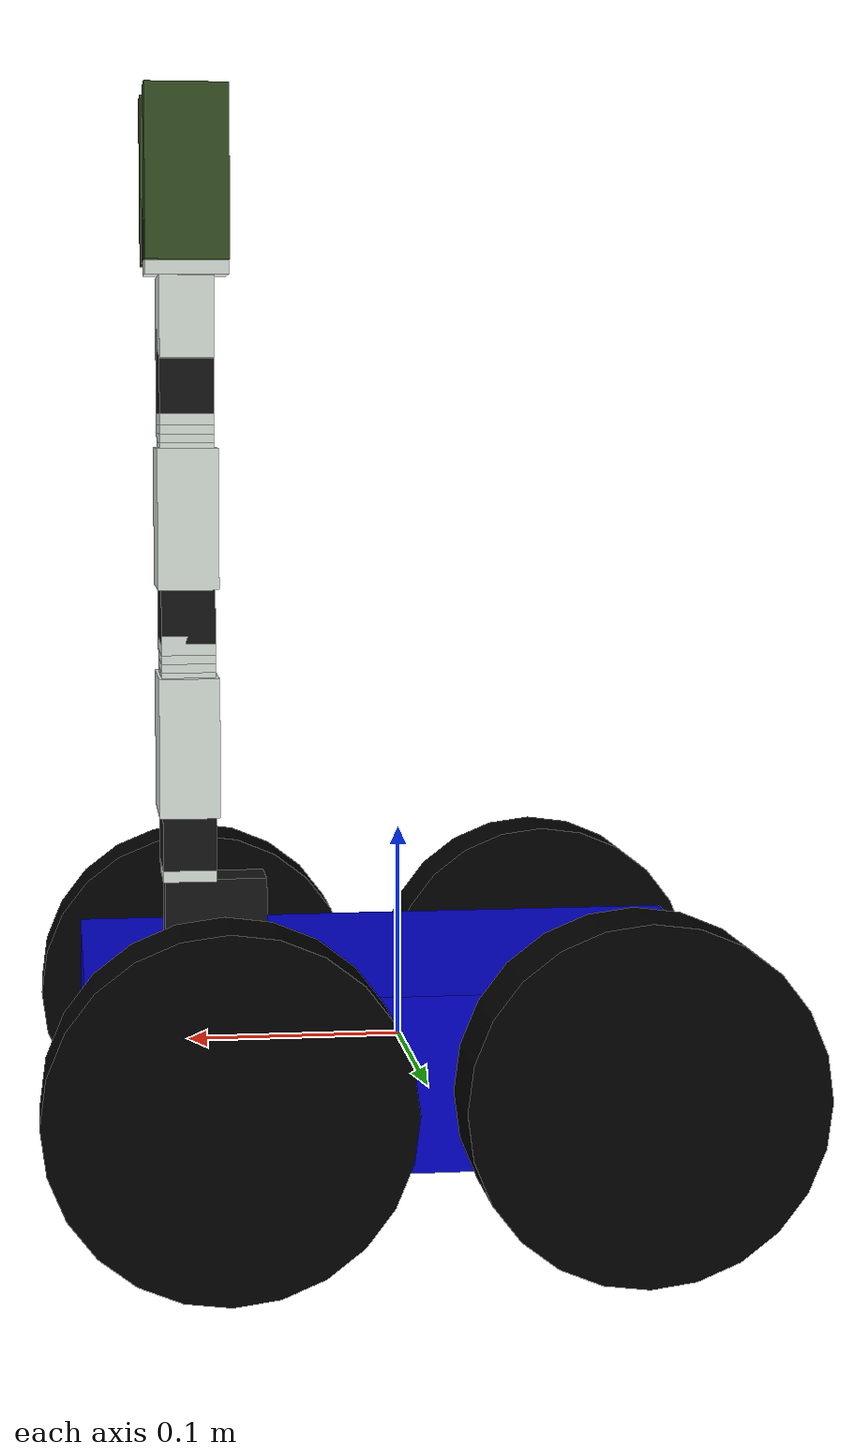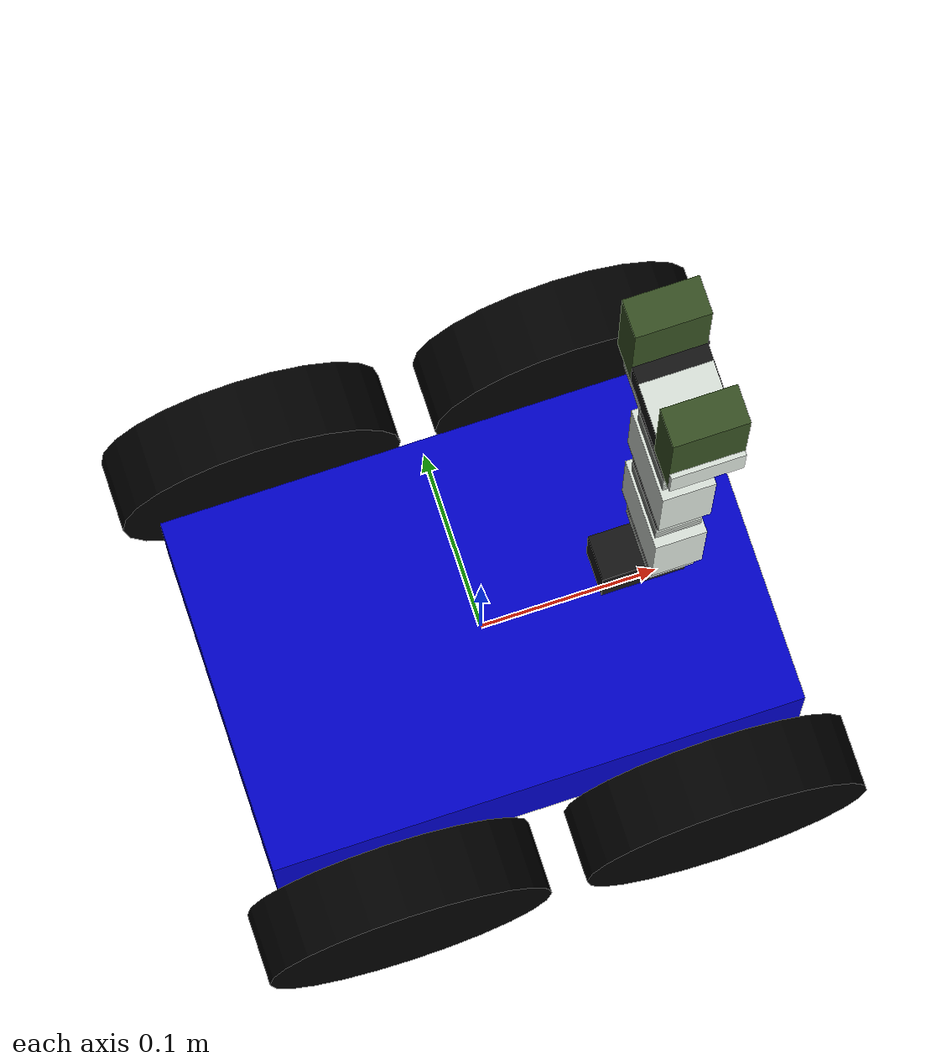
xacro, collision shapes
<?xml version="1.0"?>
<robot name="armbot" xmlns:xacro="http://ros.org/wiki/xacro">

  <xacro:property name="wheel_radius" value="0.08" />
  <xacro:property name="wheel_thickness" value="0.04" />
  <xacro:property name="chesis_length" value="0.3" />
  <xacro:property name="chesis_breadth" value="0.2" />
  <xacro:property name="chesis_height" value="0.08" />

  <material name="blue">
    <color rgba="0 0 0.8 1"/>
  </material>

  <material name="black">
    <color rgba="0 0 0 1"/>
  </material>

  <material name="white">
    <color rgba="1 1 1 1"/>
  </material>

  <xacro:macro name="box_inertia" params="mass x y z">
    <inertial>
      <mass value="${mass}" />
      <inertia ixx="${(1/12)*mass*(y*y+z*z)}" ixy="0.0" ixz="0.0" iyy="${(1/12)*mass*(x*x+z*z)}" iyz="0.0" izz="${(1/12)*mass*(y*y+x*x)}" />
    </inertial>
  </xacro:macro>

  <xacro:macro name="cyl_inertia" params="mass r h">
    <inertial>
      <mass value="${mass}" />
      <inertia ixx="${(1/12)*mass*(3*r*r+h*h)}" ixy="0.0" ixz="0.0" iyy="${(1/12)*mass*(3*r*r+h*h)}" iyz="0.0" izz="${(1/2)*mass*r*r}" />
    </inertial>
  </xacro:macro>

  <link name="base_link"></link>

  <link name="chesis">
    <visual>
      <geometry>
        <box size="${chesis_length} ${chesis_breadth} ${chesis_height}"/>
      </geometry>
      <material name="blue"/>
    </visual>
    <collision>
      <geometry>
        <box size="${chesis_length} ${chesis_breadth} ${chesis_height}"/>
      </geometry>
    </collision>
    <xacro:box_inertia mass="0.5" x="${chesis_length}" y="${chesis_breadth}" z="${chesis_height}"/>
  </link>

  <gazebo reference="chesis">
       <material>Gazebo/Blue</material>
    </gazebo>

  <joint name="fixed_joint" type="fixed">
      <parent link="base_link"/>
      <child link="chesis"/>
  </joint>

  <xacro:macro name="wheel" params="prefix suffix posx posy">
    <link name="${prefix}_${suffix}_wheel">
      <visual>
        <origin xyz="0 0 0" rpy="${pi/2} 0 0" />
        <geometry>
          <cylinder radius="${wheel_radius}" length="${wheel_thickness}"/>
        </geometry>
        <material name="black"/>
      </visual>
      <collision>
        <origin xyz="0 0 0" rpy="${pi/2} 0 0" />
        <geometry>
          <cylinder radius="${wheel_radius}" length="${wheel_thickness}"/>
        </geometry>
      </collision>
      <xacro:cyl_inertia mass="0.1" r="${wheel_radius}" h="${wheel_thickness}"/>
    </link>
    <joint name="${prefix}_${suffix}_wheel_joint" type="continuous">
      <axis xyz="0 1 0" rpy="0 0 0" />
      <parent link="chesis"/>
      <child link="${prefix}_${suffix}_wheel"/>
      <origin xyz="${(chesis_length*0.3)*posx} ${(chesis_breadth/2+wheel_thickness/2)*1.1*posy} 0" rpy="0 0 0"/>
      <dynamics damping="0"/>
    </joint>

    <gazebo reference="${prefix}_${suffix}_wheel">
       <material>Gazebo/DarkGray</material>
    </gazebo>

    <transmission name="${prefix}_${suffix}_wheel_trans">
      <type>transmission_interface/SimpleTransmission</type>
      <actuator name="${prefix}_${suffix}_wheel_motor">
        <mechanicalReduction>1</mechanicalReduction>
      </actuator>
      <joint name="${prefix}_${suffix}_wheel_joint">
        <hardwareInterface>hardware_interface/VelocityJointInterface</hardwareInterface>
      </joint>
    </transmission>
  </xacro:macro>

  <xacro:wheel prefix="front" suffix="left" posx="1" posy="1"/>
  <xacro:wheel prefix="front" suffix="right" posx="1" posy="-1"/>
  <xacro:wheel prefix="back" suffix="left" posx="-1" posy="1"/>
  <xacro:wheel prefix="back" suffix="right" posx="-1" posy="-1"/>

  <xacro:include filename="$(find roboarm)/urdf/armbot/sensors.xacro"/>
  <xacro:rgb_camera camera_name="armbot_rgb_camera" parent_link="chesis">
    <box size="0.001 0.008 0.008"/>
    <origin xyz="${(chesis_length/2)*1.001} 0 ${(chesis_height/2)*0.5}" rpy="0 0 0"/>
  </xacro:rgb_camera>
  <xacro:depth_camera camera_name="armbot_depth_camera" parent_link="chesis">
    <box size="0.001 0.08 0.01"/>
    <origin xyz="${(chesis_length/2)*1.001} 0 0" rpy="0 0 0"/>
  </xacro:depth_camera>

  <xacro:include filename="$(find roboarm)/urdf/turtlebot_arm/tbarm.xacro"/>
  <xacro:turtlebot_arm parent="chesis" color="White" gripper_color="Green"
                  pincher_gripper="false" turtlebot_gripper="true">
    <origin xyz="0.1 0 0.06"/>
  </xacro:turtlebot_arm>

  <!-- Gazebo plugin for ROS Control -->
  <gazebo>
    <plugin name="gazebo_ros_control" filename="libgazebo_ros_control.so">
      <robotNamespace>/armbot</robotNamespace>
      <legacyModeNS>true</legacyModeNS>
      <robotSimType>gazebo_ros_control/DefaultRobotHWSim</robotSimType>
    </plugin>
  </gazebo>

</robot>

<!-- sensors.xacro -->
<robot xmlns:xacro="http://ros.org/wiki/xacro">

  <xacro:macro name="rgb_camera" params="camera_name parent_link *box *origin">
    <link name="${camera_name}">
      <collision>
        <origin xyz="0 0 0" rpy="0 0 0"/>
        <geometry>
          <xacro:insert_block name="box"/>
        </geometry>
      </collision>

      <visual>
        <origin xyz="0 0 0" rpy="0 0 0"/>
        <geometry>
          <xacro:insert_block name="box"/>
        </geometry>
      </visual>

    </link>

    <joint name="${camera_name}_joint" type="fixed">
      <axis xyz="1 0 0" />
      <xacro:insert_block name="origin"/>
      <parent link="${parent_link}"/>
      <child link="${camera_name}"/>
    </joint>

    <gazebo reference="${camera_name}">
      <sensor type="camera" name="${camera_name}">
        <update_rate>30.0</update_rate>
        <camera name="${camera_name}">
          <horizontal_fov>1.3962634</horizontal_fov>
          <image>
            <width>800</width>
            <height>800</height>
            <format>R8G8B8</format>
          </image>
          <clip>
            <near>0.02</near>
            <far>300</far>
          </clip>
          <noise>
            <type>gaussian</type>
            <mean>0.0</mean>
            <stddev>0.007</stddev>
          </noise>
        </camera>
        <plugin name="camera_controller" filename="libgazebo_ros_camera.so">
          <alwaysOn>true</alwaysOn>
          <updateRate>0.0</updateRate>
          <cameraName>${camera_name}</cameraName>
          <imageTopicName>image_raw</imageTopicName>
          <cameraInfoTopicName>camera_info</cameraInfoTopicName>
          <frameName>${camera_name}</frameName>
          <hackBaseline>0.07</hackBaseline>
          <distortionK1>0.0</distortionK1>
          <distortionK2>0.0</distortionK2>
          <distortionK3>0.0</distortionK3>
          <distortionT1>0.0</distortionT1>
          <distortionT2>0.0</distortionT2>
        </plugin>
      </sensor>
      <material>Gazebo/Gray</material>
    </gazebo>
  </xacro:macro>

  <xacro:macro name="depth_camera" params="camera_name parent_link *box *origin">
    <link name="${camera_name}">
      <collision>
        <origin xyz="0 0 0" rpy="0 0 0"/>
        <geometry>
          <xacro:insert_block name="box"/>
        </geometry>
      </collision>

      <visual>
        <origin xyz="0 0 0" rpy="0 0 0"/>
        <geometry>
          <xacro:insert_block name="box"/>
        </geometry>
      </visual>

    </link>

    <joint name="${camera_name}_joint" type="fixed">
      <axis xyz="1 0 0" />
      <xacro:insert_block name="origin"/>
      <parent link="${parent_link}"/>
      <child link="${camera_name}"/>
    </joint>

    <link name="camera_depth_link"></link>
    <joint name="cameraLeft_depth_joint" type="fixed">
      <origin xyz="0 0 0" rpy="-${pi/2} 0 -${pi/2} "/>
      <parent link="${camera_name}"/>
      <child link="camera_depth_link"/>
    </joint>

    <gazebo reference="${camera_name}">
      <sensor name="${camera_name}_camera" type="depth">
        <update_rate>20</update_rate>
        <camera>
          <horizontal_fov>1.047198</horizontal_fov>
          <image>
            <width>640</width>
            <height>480</height>
            <format>R8G8B8</format>
          </image>
          <clip>
            <near>0.001</near>
            <far>3</far>
          </clip>
        </camera>
        <plugin name="${camera_name}_controller" filename="libgazebo_ros_openni_kinect.so">
          <baseline>0.2</baseline>
          <alwaysOn>true</alwaysOn>
          <updateRate>1.0</updateRate>
          <cameraName>${camera_name}_ir</cameraName>
          <imageTopicName>/${camera_name}/depth/image_raw</imageTopicName>
          <cameraInfoTopicName>/${camera_name}/depth/camera_info</cameraInfoTopicName>
          <depthImageTopicName>/${camera_name}/depth/image_raw</depthImageTopicName>
          <depthImageInfoTopicName>/${camera_name}/depth/camera_info</depthImageInfoTopicName>
          <pointCloudTopicName>/${camera_name}/depth/points</pointCloudTopicName>
          <frameName>camera_depth_link</frameName>
          <pointCloudCutoff>0.001</pointCloudCutoff>
          <pointCloudCutoffMax>3.0</pointCloudCutoffMax>
          <distortionK1>0.00000001</distortionK1>
          <distortionK2>0.00000001</distortionK2>
          <distortionK3>0.00000001</distortionK3>
          <distortionT1>0.00000001</distortionT1>
          <distortionT2>0.00000001</distortionT2>
          <CxPrime>0</CxPrime>
          <Cx>0</Cx>
          <Cy>0</Cy>
          <focalLength>0</focalLength>
          <hackBaseline>0</hackBaseline>
        </plugin>
      </sensor>
    </gazebo>
  </xacro:macro>

  <xacro:macro name="imu" params="imu_name parent_link *box *origin">
    <link name="${imu_name}">

      <visual>
        <origin xyz="0 0 0" rpy="0 0 0"/>
        <geometry>
          <xacro:insert_block name="box"/>
        </geometry>
      </visual>

    </link>

    <joint name="${imu_name}_joint" type="fixed">
      <axis xyz="0 0 1" />
      <xacro:insert_block name="origin"/>
      <parent link="${parent_link}"/>
      <child link="${imu_name}"/>
    </joint>

    <gazebo reference="${imu_name}">
      <gravity>true</gravity>
      <sensor name="${imu_name}" type="imu">
        <always_on>true</always_on>
        <update_rate>100</update_rate>
        <visualize>true</visualize>
        <topic>__default_topic__</topic>
        <plugin filename="libgazebo_ros_imu_sensor.so" name="imu_plugin">
          <topicName>armbot/${imu_name}</topicName>
          <bodyName>${imu_name}_link</bodyName>
          <updateRateHZ>30.0</updateRateHZ>
          <gaussianNoise>0.0</gaussianNoise>
          <xyzOffset>0 0 0</xyzOffset>
          <rpyOffset>0 0 0</rpyOffset>
          <frameName>${imu_name}</frameName>
        </plugin>
        <pose>0 0 0 0 0 0</pose>
      </sensor>
    </gazebo>
  </xacro:macro>

</robot>

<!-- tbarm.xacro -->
<robot xmlns:xacro="http://ros.org/wiki/xacro">

    <xacro:property name="joints_vlimit" value="0.571"/>
    <xacro:property name="pan_llimit" value="-2.617"/>
    <xacro:property name="pan_ulimit" value="2.617"/>
    <xacro:property name="shoulder_llimit" value="-2.617"/>
    <xacro:property name="shoulder_ulimit" value="2.617"/>
    <xacro:property name="elbow_llimit" value="-2.617"/>
    <xacro:property name="elbow_ulimit" value="2.617"/>
    <xacro:property name="wrist_llimit" value="-1.745"/>
    <xacro:property name="wrist_ulimit" value="1.745"/>

    <!-- Included URDF Files -->
    <xacro:include filename="$(find roboarm)/urdf/turtlebot_arm/turtlebot_arm.xacro"/>

    <xacro:macro name="servo_transmission" params="name">
      <transmission name="${name}_trans">
        <type>transmission_interface/SimpleTransmission</type>
        <actuator name="${name}_motor">
          <mechanicalReduction>1</mechanicalReduction>
        </actuator>
        <joint name="${name}_joint">
          <hardwareInterface>hardware_interface/PositionJointInterface</hardwareInterface>
        </joint>
      </transmission>
    </xacro:macro>

    <xacro:servo_transmission name="arm_shoulder_pan"/>
    <xacro:servo_transmission name="arm_shoulder_lift"/>
    <xacro:servo_transmission name="arm_elbow_flex"/>
    <xacro:servo_transmission name="arm_wrist_flex"/>
    <xacro:servo_transmission name="gripper"/>

    <xacro:imu imu_name="shoulder_imu" parent_link="arm_shoulder_lift_link">
        <box size="0.008 0.008 0.001"/>
        <origin xyz="0 0 0" rpy="0 0 0"/>
    </xacro:imu>
    <xacro:imu imu_name="elbow_imu" parent_link="arm_elbow_flex_link">
        <box size="0.008 0.008 0.001"/>
        <origin xyz="0 0 0" rpy="0 0 0"/>
    </xacro:imu>
    <xacro:imu imu_name="wrist_imu" parent_link="arm_wrist_flex_link">
        <box size="0.008 0.008 0.001"/>
        <origin xyz="0 0 0" rpy="0 0 0"/>
    </xacro:imu>

</robot>

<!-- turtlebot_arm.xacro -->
<!-- Arm description for Turtlebot Arm and PhantomX Pincher arm -->
<robot xmlns:xacro="http://ros.org/wiki/xacro">
  <xacro:include filename="$(find roboarm)/urdf/turtlebot_arm/arm_hardware.xacro"/>

  <material name="White">
    <color rgba="0.87 0.90 0.87 1.0"/>
  </material>
  <material name="Black">
    <color rgba="0.08 0.08 0.08 1.0"/>
  </material>
  <material name="Gray">
    <color rgba="0.2 0.2 0.21 1.0"/>
  </material>
  <material name="Green">
    <color rgba="0.22 0.32 0.14 1.0"/>
  </material>

  <xacro:macro name="turtlebot_arm" params="parent color pincher_gripper turtlebot_gripper gripper_color *origin">
    <link name="arm_base_link"/>
    <joint name="arm_base_joint" type="fixed">
      <xacro:insert_block name="origin"/>
      <parent link="${parent}"/>
      <child link="arm_base_link"/>
    </joint>

    <!-- shoulder pan joint -->
    <xacro:dynamixel_AX12_fixed parent="arm_base_link" name="arm_shoulder_pan_servo">
      <origin xyz="0 0 0" rpy="${M_PI/2} 0 ${M_PI/2}"/>
    </xacro:dynamixel_AX12_fixed>
    <xacro:bioloid_F3_revolute parent="arm_shoulder_pan_servo_link" name="arm_shoulder_pan" color="${color}"
                         vlimit="${joints_vlimit}" llimit="${pan_llimit}" ulimit="${pan_ulimit}">
      <origin xyz="0 ${AX12_WIDTH/2} 0" rpy="${-M_PI/2} ${M_PI/2} ${M_PI}"/>
    </xacro:bioloid_F3_revolute>

    <!-- shoulder lift joint -->
    <xacro:dynamixel_AX12_fixed parent="arm_shoulder_pan_link" name="arm_shoulder_lift_servo">
      <origin xyz="0 0 ${-AX12_HEIGHT-F10_HEIGHT+0.001}" rpy="0 ${M_PI} 0"/>
    </xacro:dynamixel_AX12_fixed>
    <xacro:bioloid_F4_revolute parent="arm_shoulder_lift_servo_link" name="arm_shoulder_lift" color="${color}"
                         vlimit="${joints_vlimit}" llimit="${shoulder_llimit}" ulimit="${shoulder_ulimit}">
      <origin xyz="0 0 0" rpy="0 0 0"/>
    </xacro:bioloid_F4_revolute>
    <xacro:bioloid_F10_fixed parent="arm_shoulder_lift_link" name="arm_shoulder_F10_0" color="${color}">
      <origin xyz="0 0 ${F4_HEIGHT+F10_HEIGHT/2}" rpy="0 0 0"/>
    </xacro:bioloid_F10_fixed>
    <xacro:bioloid_F10_fixed parent="arm_shoulder_F10_0_link" name="arm_shoulder_F10_1" color="${color}">
      <origin xyz="0 0 ${F10_HEIGHT}" rpy="0 0 0"/>
    </xacro:bioloid_F10_fixed>
    <xacro:bioloid_F10_fixed parent="arm_shoulder_F10_1_link" name="arm_shoulder_F10_2" color="${color}">
      <origin xyz="0 0 ${F10_HEIGHT}" rpy="0 0 0"/>
    </xacro:bioloid_F10_fixed>
    <xacro:bioloid_F3_fixed parent="arm_shoulder_F10_2_link" name="arm_shoulder_F3_0" color="${color}">
      <origin xyz="0 0 ${F10_HEIGHT/2}" rpy="0 ${M_PI} 0"/>
    </xacro:bioloid_F3_fixed>

    <!-- elbow joint -->
    <xacro:dynamixel_AX12_fixed parent="arm_shoulder_F3_0_link" name="arm_elbow_flex_servo">
      <origin xyz="0 0 ${-AX12_HEIGHT-F10_HEIGHT+0.001}" rpy="0 ${M_PI} 0"/>
    </xacro:dynamixel_AX12_fixed>
    <xacro:bioloid_F4_revolute parent="arm_elbow_flex_servo_link" name="arm_elbow_flex" color="${color}"
                         vlimit="${joints_vlimit}" llimit="${elbow_llimit}" ulimit="${elbow_ulimit}">
      <origin xyz="0 0 0" rpy="0 0 0"/>
    </xacro:bioloid_F4_revolute>
    <xacro:bioloid_F10_fixed parent="arm_elbow_flex_link" name="arm_elbow_F10_0" color="${color}">
      <origin xyz="0 0 ${F4_HEIGHT+F10_HEIGHT/2}" rpy="0 0 0"/>
    </xacro:bioloid_F10_fixed>
    <xacro:bioloid_F10_fixed parent="arm_elbow_F10_0_link" name="arm_elbow_F10_1" color="${color}">
      <origin xyz="0 0 ${F10_HEIGHT}" rpy="0 0 0"/>
    </xacro:bioloid_F10_fixed>
    <xacro:bioloid_F10_fixed parent="arm_elbow_F10_1_link" name="arm_elbow_F10_2" color="${color}">
      <origin xyz="0 0 ${F10_HEIGHT}" rpy="0 0 0"/>
    </xacro:bioloid_F10_fixed>
    <xacro:bioloid_F3_fixed parent="arm_elbow_F10_2_link" name="arm_elbow_F3_0" color="${color}">
      <origin xyz="0 0 ${F10_HEIGHT/2}" rpy="0 ${M_PI} 0"/>
    </xacro:bioloid_F3_fixed>

    <!-- wrist joint -->
    <xacro:dynamixel_AX12_fixed parent="arm_elbow_F3_0_link" name="arm_wrist_flex_servo">
      <origin xyz="0 0 ${-AX12_HEIGHT-F10_HEIGHT+0.001}" rpy="0 ${M_PI} 0"/>
    </xacro:dynamixel_AX12_fixed>
    <xacro:bioloid_F2_revolute parent="arm_wrist_flex_servo_link" name="arm_wrist_flex" color="${color}"
                         vlimit="${joints_vlimit}" llimit="${wrist_llimit}" ulimit="${wrist_ulimit}">
      <origin xyz="0 0 0" rpy="0 0 0"/>
    </xacro:bioloid_F2_revolute>

  <!-- gripper - Load either Turtlebot gripper or Pincher Gripper -->
  <xacro:if value="${pincher_gripper}">
  <xacro:include filename="$(find roboarm)/urdf/turtlebot_arm/pincher_gripper.xacro"/>
  </xacro:if>
  <xacro:if value="${turtlebot_gripper}">
  <xacro:include filename="$(find roboarm)/urdf/turtlebot_arm/turtlebot_gripper.xacro"/>
  </xacro:if>

  </xacro:macro>

</robot>

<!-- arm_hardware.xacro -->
<!-- Basic URDF components for Turtlebot Arm and PhantomX Pincher Arm-->
<robot xmlns:xacro="http://ros.org/wiki/xacro">
  <xacro:property name="M_PI" value="3.14159"/>
  <xacro:property name="M_SCALE" value="0.001"/>
  <xacro:property name="F10_HEIGHT" value="0.004"/>
  <xacro:property name="F4_HEIGHT" value="0.0525"/>
  <xacro:property name="F3_HEIGHT" value="0.009"/>
  <xacro:property name="AX12_HEIGHT" value="0.0385"/>
  <xacro:property name="AX12_WIDTH" value="0.038"/>
  <xacro:property name="AX12_LENGTH" value="0.050"/>
  <xacro:property name="F2_HEIGHT" value="0.0265"/>

  <!-- Calculates the inertial properties of a bounding box. From
       https://en.wikipedia.org/wiki/List_of_moments_of_inertia#List_of_3D_inertia_tensors-->
  <xacro:macro name="box_inertia" params="length width height mass">
    <inertial>
      <mass value="${mass}"/>
      <origin xyz="0 0 0"/>
      <inertia ixx="${mass/12*(height**2+length**2)}" ixy="0" ixz = "0"
               iyy="${mass/12*(width**2+length**2)}" iyz="0"
               izz="${mass/12*(width**2+height**2)}"/>
    </inertial>
  </xacro:macro>

  <xacro:macro name="arm_mount" params="parent name color *origin">
    <joint name="${name}_joint" type="fixed">
      <xacro:insert_block name="origin"/>
      <parent link="${parent}"/>
      <child link="${name}_link"/>
    </joint>

    <link name="${name}_link">
      <xacro:box_inertia length="0.074" width="0.074" height="0.004" mass="0.018"/>

      <visual>
        <origin xyz="-0.028 -0.0493 0.014" rpy="0.0 0.0 -${M_PI/2}"/>
        <geometry>
          <mesh filename="package://roboarm/meshes/turtlebot_arm/mount.stl" scale="${M_SCALE} ${M_SCALE} ${M_SCALE}"/>
        </geometry>
        <material name="${color}"/>
      </visual>

      <collision>
        <origin xyz="-0.01 0.0 0.0165" rpy="0.0 0.0 0.0"/>
        <geometry>
          <box size="0.074 0.074 0.004"/>
        </geometry>
      </collision>
    </link>

    <gazebo reference="${name}_link">
      <material>Gazebo/${color}</material>
      <selfCollide>true</selfCollide>
      <gravity>true</gravity>
    </gazebo>
  </xacro:macro>

  <xacro:macro name="finger_fixed" params="parent name color *origin">
    <joint name="${name}_joint" type="fixed">
      <xacro:insert_block name="origin"/>
      <parent link="${parent}"/>
      <child link="${name}_link"/>
    </joint>

    <link name="${name}_link">
      <xacro:box_inertia length="0.0783" width="0.03801" height="0.0193" mass="0.015"/>

      <visual>
        <origin xyz=" 0 0 0 " rpy="0 0 0"/>
        <geometry>
          <mesh filename="package://roboarm/meshes/turtlebot_arm/turtlebot_finger.stl" scale="${M_SCALE} ${M_SCALE} ${M_SCALE}"/>
        </geometry>
        <material name="${color}"/>
      </visual>

      <collision>
        <origin xyz="0.02645 0.0 -0.00655" rpy="0 0 0"/>
        <geometry>
          <box size="0.0783 0.03801 0.0193"/>
        </geometry>
      </collision>
    </link>

    <gazebo reference="${name}_link">
      <material>Gazebo/${color}</material>
      <selfCollide>true</selfCollide>
      <gravity>true</gravity>
    </gazebo>
  </xacro:macro>

  <xacro:macro name="dynamixel_AX12_fixed" params="parent name *origin">
    <joint name="${name}_joint" type="fixed">
      <xacro:insert_block name="origin"/>
      <parent link="${parent}"/>
      <child link="${name}_link"/>
    </joint>

    <link name="${name}_link">
      <inertial>
        <mass value="0.055"/>
        <origin xyz="0 0 0"/>
        <inertia ixx="0.000017012" ixy="0.0" ixz="0.0"
                 iyy="0.000013258" iyz="0.0"
                 izz="0.000009483"/>
      </inertial>

      <visual>
        <origin xyz=" 0 0 0 " rpy="0 0 0"/>
        <geometry>
          <mesh filename="package://roboarm/meshes/turtlebot_arm/ax12_box.stl" scale="${M_SCALE} ${M_SCALE} ${M_SCALE}"/>
        </geometry>
        <material name="Black"/>
      </visual>

      <collision>
        <origin xyz="0.0 0.0 -0.01241" rpy="0 0 0"/>
        <geometry>
          <box size="0.025 0.038 0.04762"/>
        </geometry>
      </collision>
    </link>

    <gazebo reference="${name}_link">
      <material>Gazebo/Black</material>
      <selfCollide>true</selfCollide>
      <gravity>true</gravity>
    </gazebo>
  </xacro:macro>

  <xacro:macro name="bioloid_F10_fixed" params="parent name color *origin">
    <joint name="${name}_joint" type="fixed">
      <xacro:insert_block name="origin"/>
      <parent link="${parent}"/>
      <child link="${name}_link"/>
    </joint>

    <link name="${name}_link">
      <xacro:box_inertia length="0.025" width="0.038" height="0.004" mass="0.004"/>

      <visual>
        <origin xyz=" 0 0 0 " rpy="0 0 0"/>
        <geometry>
          <mesh filename="package://roboarm/meshes/turtlebot_arm/F10.stl" scale="${M_SCALE} ${M_SCALE} ${M_SCALE}"/>
        </geometry>
        <material name="${color}"/>
      </visual>

      <collision>
        <origin xyz="0.0 0.0 0.0" rpy="0 0 0"/>
        <geometry>
          <box size="0.025 0.038 0.004"/>
        </geometry>
      </collision>
    </link>

    <gazebo reference="${name}_link">
      <material>Gazebo/${color}</material>
      <selfCollide>true</selfCollide>
      <gravity>true</gravity>
    </gazebo>
  </xacro:macro>

  <xacro:macro name="bioloid_F3_fixed" params="parent name color *origin">
    <joint name="${name}_joint" type="fixed">
      <xacro:insert_block name="origin"/>
      <parent link="${parent}"/>
      <child link="${name}_link"/>
    </joint>

    <link name="${name}_link">
      <xacro:box_inertia length="0.025" width="0.038" height="0.009" mass="0.005"/>

      <visual>
        <origin xyz=" 0 0 0 " rpy="0 0 0"/>
        <geometry>
          <mesh filename="package://roboarm/meshes/turtlebot_arm/F3.stl" scale="${M_SCALE} ${M_SCALE} ${M_SCALE}"/>
        </geometry>
        <material name="${color}"/>
      </visual>

      <collision>
        <origin xyz="0.0 0.0 -0.0045" rpy="0 0 0"/>
        <geometry>
          <box size="0.025 0.038 0.009"/>
        </geometry>
      </collision>
    </link>

    <gazebo reference="${name}_link">
      <material>Gazebo/${color}</material>
      <selfCollide>true</selfCollide>
      <gravity>true</gravity>
    </gazebo>
  </xacro:macro>

  <xacro:macro name="bioloid_F3_revolute" params="parent name color llimit ulimit vlimit *origin">
    <joint name="${name}_joint" type="revolute">
      <xacro:insert_block name="origin"/>
      <axis xyz="0 0 -1"/>
      <limit effort="1" velocity="${vlimit}" lower="${llimit}" upper="${ulimit}"/>
      <dynamics friction="0.13"/>
      <parent link="${parent}"/>
      <child link="${name}_link"/>
    </joint>

    <link name="${name}_link">
      <xacro:box_inertia length="0.025" width="0.038" height="0.009" mass="0.008"/>

      <visual>
        <origin xyz=" 0 0 0 " rpy="0 0 0"/>
        <geometry>
          <mesh filename="package://roboarm/meshes/turtlebot_arm/F3.stl" scale="${M_SCALE} ${M_SCALE} ${M_SCALE}"/>
        </geometry>
        <material name="${color}"/>
      </visual>

      <collision>
        <origin xyz="0.0 0.0 -0.0045" rpy="0 0 0"/>
        <geometry>
          <box size="0.025 0.038 0.009"/>
        </geometry>
      </collision>
    </link>

    <gazebo reference="${name}_link">
      <material>Gazebo/${color}</material>
      <selfCollide>true</selfCollide>
      <gravity>true</gravity>
    </gazebo>
  </xacro:macro>

  <xacro:macro name="bioloid_F2_revolute" params="parent name color llimit ulimit vlimit *origin">
    <joint name="${name}_joint" type="revolute">
      <xacro:insert_block name="origin"/>
      <axis xyz="0 1 0"/>
      <limit effort="1" velocity="${vlimit}" lower="${llimit}" upper="${ulimit}"/>
      <dynamics friction="0.13"/>
      <parent link="${parent}"/>
      <child link="${name}_link"/>
    </joint>

    <link name="${name}_link">
      <xacro:box_inertia length="0.025" width="0.0485" height="0.0375" mass="0.010"/>

      <visual>
        <origin xyz=" 0 0 0 " rpy="0 0 0"/>
        <geometry>
          <mesh filename="package://roboarm/meshes/turtlebot_arm/F2.stl" scale="${M_SCALE} ${M_SCALE} ${M_SCALE}"/>
        </geometry>
        <material name="${color}"/>
      </visual>

      <collision>
        <origin xyz="0.0 0.0 0.00775" rpy="0 0 0"/>
        <geometry>
          <box size="0.025 0.0485 0.0375"/>
        </geometry>
      </collision>
    </link>

    <gazebo reference="${name}_link">
      <material>Gazebo/${color}</material>
      <selfCollide>true</selfCollide>
      <gravity>true</gravity>
    </gazebo>
  </xacro:macro>

  <xacro:macro name="bioloid_F4_revolute" params="parent name color llimit ulimit vlimit *origin">
    <joint name="${name}_joint" type="revolute">
      <xacro:insert_block name="origin"/>
      <axis xyz="0 1 0"/>
      <limit effort="1" velocity="${vlimit}" lower="${llimit}" upper="${ulimit}"/>
      <dynamics friction="0.13"/>
      <parent link="${parent}"/>
      <child link="${name}_link"/>
    </joint>

    <link name="${name}_link">
      <xacro:box_inertia length="0.028" width="0.0485" height="0.065" mass="0.016"/>

      <visual>
        <origin xyz=" 0 0 0 " rpy="0 0 0"/>
        <geometry>
          <mesh filename="package://roboarm/meshes/turtlebot_arm/F4.stl" scale="${M_SCALE} ${M_SCALE} ${M_SCALE}"/>
        </geometry>
        <material name="${color}"/>
      </visual>

      <collision>
        <origin xyz="0.0 0.0 0.0215" rpy="0 0 0"/>
        <geometry>
          <box size="0.028 0.0485 0.065"/>
        </geometry>
      </collision>
    </link>

    <gazebo reference="${name}_link">
      <material>Gazebo/${color}</material>
      <selfCollide>true</selfCollide>
      <gravity>true</gravity>
    </gazebo>
  </xacro:macro>

  <xacro:macro name="gripper_finger_base" params="parent name color *origin">
    <joint name="${name}_joint" type="fixed">
      <xacro:insert_block name="origin"/>
      <parent link="${parent}"/>
      <child link="${name}_link"/>
    </joint>

    <link name="${name}_link">
      <xacro:box_inertia length="0.002" width="0.040" height="0.075" mass="0.00001"/>
      <visual>
        <origin xyz="0.016 0 -.015 " rpy="${M_PI} ${-M_PI/2} ${M_PI/2}"/>
        <geometry>
          <mesh filename="package://roboarm/meshes/turtlebot_arm/pincher_finger_base.stl" scale=".01 .01 .01"/>
        </geometry>
        <material name="${color}"/>
      </visual>

      <collision>
        <origin xyz="0.016 0.0 -0.015" rpy="0 0 0"/>
        <geometry>
          <box size="0.002 0.040 0.075"/>
        </geometry>
      </collision>
    </link >

    <gazebo reference="${name}_link">
      <material>Gazebo/${color}</material>
      <selfCollide>true</selfCollide>
      <gravity>true</gravity>
    </gazebo>
  </xacro:macro>

    <xacro:macro name="pincher_gripper" params="name color *origin">
      <link name="${name}_link">
      <xacro:box_inertia length="0.036" width="0.028" height="0.004" mass="0.00001"/>
      <visual>
        <xacro:insert_block name="origin"/>
        <geometry>
          <mesh filename="package://roboarm/meshes/turtlebot_arm/pincher_finger.stl" scale=".01 .01 .01"/>
        </geometry>
        <material name="${color}"/>
      </visual>
      <collision>
        <xacro:insert_block name="origin"/>
        <geometry>
          <box size="0.023 0.028 0.038"/>
        </geometry>
      </collision>
    </link>

    <gazebo reference="${name}_link">
      <material>Gazebo/${color}</material>
      <selfCollide>true</selfCollide>
      <gravity>true</gravity>
    </gazebo>
  </xacro:macro>
</robot>

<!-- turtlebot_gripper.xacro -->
<!-- Turtlebot Arm gripper URDF-->
<robot xmlns:xacro="http://ros.org/wiki/xacro">
    <xacro:bioloid_F3_fixed parent="arm_wrist_flex_link" name="arm_wrist_F3_0" color="${color}">
      <origin xyz="0 0.016 ${F2_HEIGHT}" rpy="0 ${M_PI} ${-M_PI/2}"/>
    </xacro:bioloid_F3_fixed>
    <!-- gripper joint -->
    <xacro:dynamixel_AX12_fixed parent="arm_wrist_F3_0_link" name="gripper_servo">
      <origin xyz="-0.02275 0 ${-AX12_WIDTH/2}" rpy="${M_PI} ${M_PI/2} 0"/>
    </xacro:dynamixel_AX12_fixed>

    <!-- finger 1 -->
    <joint name="gripper_joint" type="revolute">
      <origin xyz="0 0 0" rpy="0 0 0"/>
      <axis xyz="0 1 0"/>
      <limit effort="1" velocity="0.785" lower="-0.40" upper="0.46"/>
      <parent link="gripper_servo_link"/>
      <child link="gripper_active_link"/>
    </joint>
    <link name="gripper_active_link">
      <inertial>
        <mass value="0.010"/>
        <origin xyz="0 0 0"/>
        <inertia ixx="3.13e-6" ixy="0.0" ixz="0.0"
                 iyy="2.48e-6" iyz="0.0"
                 izz="1.69e-6"/>
      </inertial>
      <visual>
        <origin xyz=" 0 0 0 " rpy="0 0 0"/>
        <geometry>
          <mesh filename="package://roboarm/meshes/turtlebot_arm/F2.stl" scale="${M_SCALE} ${M_SCALE} ${M_SCALE}"/>
        </geometry>
        <material name="${color}"/>
      </visual>
      <collision>
        <origin xyz="0.0 0.0 0.00775" rpy="0 0 0"/>
        <geometry>
          <box size="0.025 0.0375 0.0485"/>
        </geometry>
      </collision>
    </link>
    <xacro:finger_fixed parent="gripper_active_link" name="gripper_active_finger" color="${gripper_color}">
      <origin xyz="0 0 ${F2_HEIGHT}" rpy="0 0 0"/>
    </xacro:finger_fixed>

    <!-- finger 2 -->
    <xacro:bioloid_F3_fixed parent="gripper_servo_link" name="gripper_static" color="${color}">
      <origin xyz="0 0 ${-AX12_HEIGHT-F10_HEIGHT+0.001}" rpy="0 ${M_PI} 0"/>
    </xacro:bioloid_F3_fixed>
    <xacro:finger_fixed parent="gripper_static_link" name="gripper_static_finger" color="${gripper_color}">
      <origin xyz="0 0 0" rpy="0 0 ${M_PI}"/>
    </xacro:finger_fixed>

    <gazebo reference="gripper_static_finger_link">
			<mu1 value="100.0"/>
			<mu2 value="50.0"/>
			<kp value="10000000.0" />
			<kd value="1.0" />
		</gazebo>

    <gazebo reference="gripper_active_finger_link">
			<mu1 value="100.0"/>
			<mu2 value="50.0"/>
			<kp value="10000000.0" />
			<kd value="1.0" />
		</gazebo>

    <gazebo>
      <plugin name="gazebo_grasp_fix" filename="libgazebo_grasp_fix.so">
        <robotNamespace>/armbot</robotNamespace>
          <arm>
            <arm_name>armbot</arm_name>
            <gripper_link>gripper_active_link</gripper_link>
            <gripper_link>arm_wrist_flex_link</gripper_link>
            <palm_link>arm_wrist_flex_link</palm_link>
          </arm>
        <forces_angle_tolerance>100</forces_angle_tolerance>
        <update_rate>4</update_rate>
        <grip_count_threshold>4</grip_count_threshold>
        <max_grip_count>8</max_grip_count>
        <release_tolerance>0.005</release_tolerance>
        <disable_collisions_on_attach>false</disable_collisions_on_attach>
        <contact_topic>__default_topic__</contact_topic>
      </plugin>
    </gazebo>
</robot>
